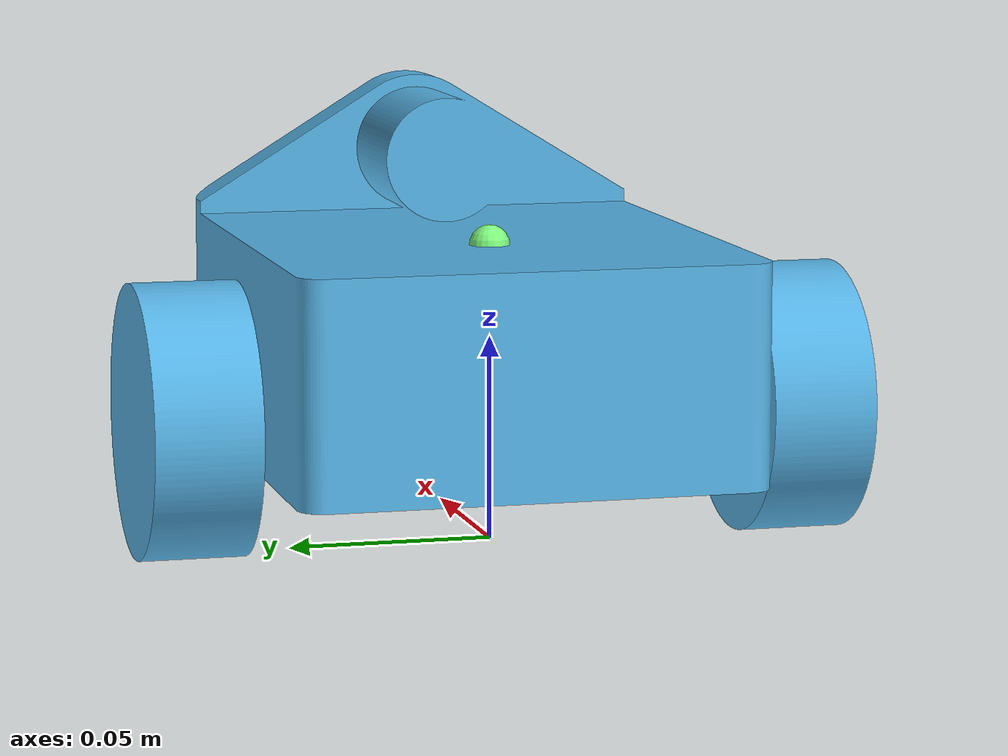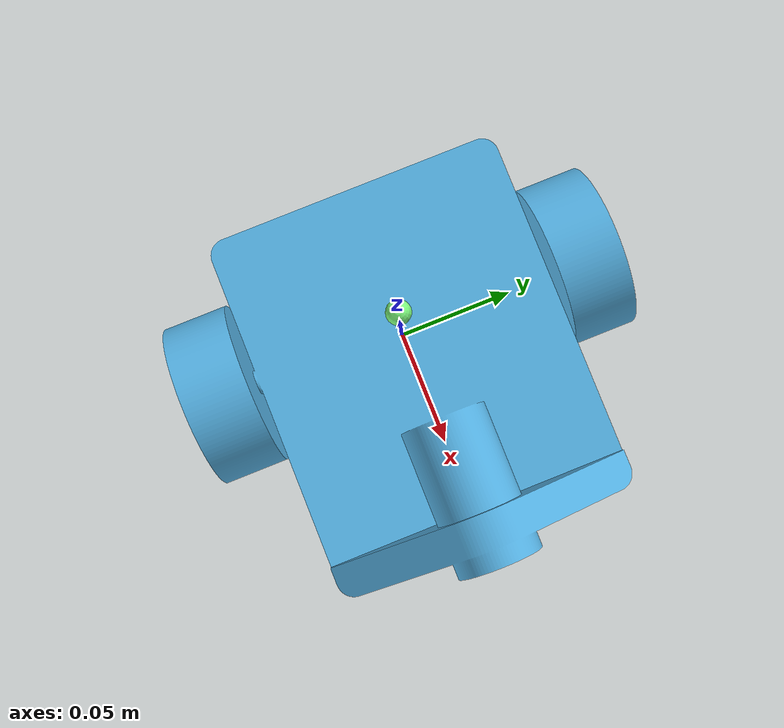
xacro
<?xml version="1.0"?>
<robot name="Traini" xmlns:xacro="http://ros.org/wiki/xacro">

    <xacro:macro name="null_inertia">
        <inertial>
            <mass value="0.001"/>
            <inertia ixx="0.001" ixy="0" ixz="0" iyy="0.001" iyz="0" izz="0.001"/>
        </inertial>
    </xacro:macro>

    <!-- Links -->

    <link name="base_footprint">
    </link>

    <link name="base_link">
        <xacro:null_inertia/>
        <visual>
            <origin xyz="0 0 -0.0325" rpy="0 0 0"/>
            <geometry>
                <mesh filename="package://traini_description/meshes/Trainiii.dae"/>
            </geometry>
        </visual>
    </link>

    <link name="camera_link">
        <xacro:null_inertia/>
    </link>

    <link name="camera_link_optical">
        <xacro:null_inertia/>
    </link>

    <link name="imu_link">
        <xacro:null_inertia/>
    </link>

    <link name="light_link">
        <xacro:null_inertia/>
        <visual name="indicator_light">
            <geometry>
                <sphere radius="0.005"/>
            </geometry>
            <material name="indicator_light_material">
                <color rgba="0.5 1 0.5 1"/>
            </material>
        </visual>
    </link>

    <!-- Joints -->

    <joint name="base_joint" type="fixed">
        <parent link="base_footprint"/>
        <child link="base_link"/>
        <origin xyz="0 0 0.0325" rpy="0 0 0"/>
    </joint>

    <joint name="camera_joint" type="fixed">
        <parent link="base_link"/>
        <child link="camera_link"/>
        <origin xyz="0.1 0 0.055" rpy="0 0.3 0"/>
    </joint>

    <joint name="camera_joint_optical" type="fixed">
        <parent link="camera_link"/>
        <child link="camera_link_optical"/>
        <origin xyz="0 0 0" rpy="-1.5707963 0.0 -1.5707963"/>
    </joint>

    <joint name="imu_joint" type="fixed">
        <parent link="base_link"/>
        <child link="imu_link"/>
        <origin xyz="0 0 0" rpy="0 0 0"/>
    </joint>

    <joint name="light_joint" type="fixed">
        <parent link="base_link"/>
        <child link="light_link"/>
        <origin xyz="0 0 0.04" rpy="0 0 0"/>
    </joint>

</robot>
